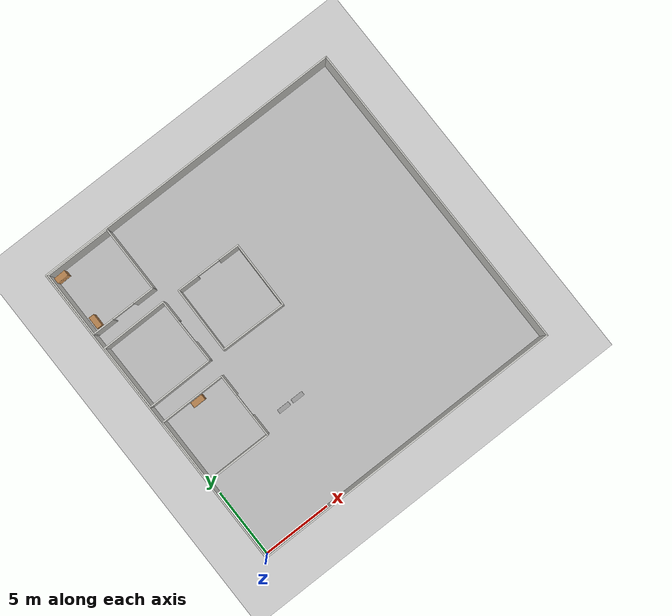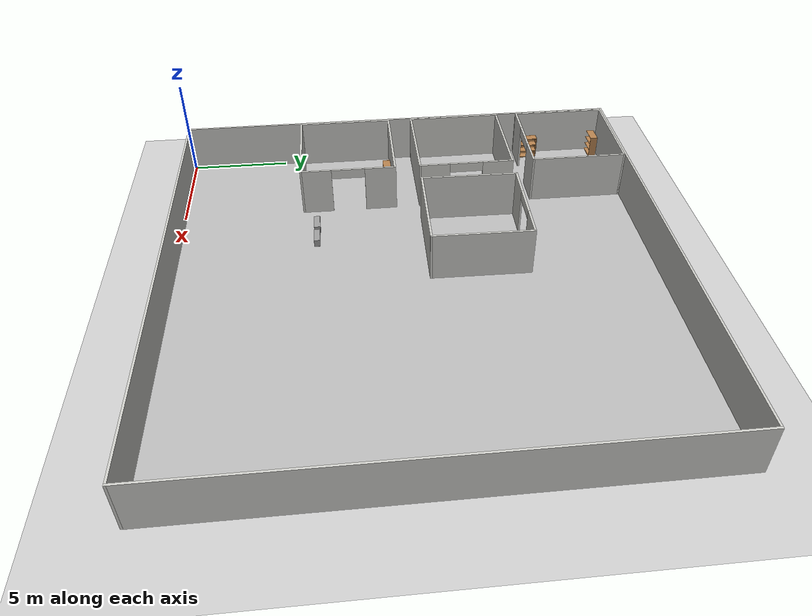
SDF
<sdf version="1.6">
 <world name="default">
  <model name="ground_plane">
   <static>1</static>
   <link name="link">
    <collision name="collision">
     <geometry><plane><normal>0 0 1</normal><size>100 100</size></plane></geometry>
     <surface><friction><ode><mu>100</mu><mu2>50</mu2></ode></friction></surface>
    </collision>
    <visual name="visual">
     <cast_shadows>0</cast_shadows>
     <geometry><plane><normal>0 0 1</normal><size>100 100</size></plane></geometry>
     <material>
      <script><uri>file://media/materials/scripts/gazebo.material</uri><name>Gazebo/Grey</name></script>
     </material>
    </visual>
   </link>
  </model>
  <model name="bookshelf">
   <static>1</static>
   <link name="link">
    <inertial><mass>1</mass></inertial>
    <collision name="back">
     <pose>0 0.005 0.6 0 -0 0</pose>
     <geometry><box><size>0.9 0.01 1.2</size></box></geometry>
    </collision>
    <visual name="visual1">
     <pose>0 0.005 0.6 0 -0 0</pose>
     <geometry><box><size>0.9 0.01 1.2</size></box></geometry>
     <material>
      <script><uri>file://media/materials/scripts/gazebo.material</uri><name>Gazebo/Wood</name></script>
     </material>
    </visual>
    <collision name="left_side">
     <pose>0.45 -0.195 0.6 0 -0 0</pose>
     <geometry><box><size>0.02 0.4 1.2</size></box></geometry>
    </collision>
    <visual name="visual2">
     <pose>0.45 -0.195 0.6 0 -0 0</pose>
     <geometry><box><size>0.02 0.4 1.2</size></box></geometry>
     <material>
      <script><uri>file://media/materials/scripts/gazebo.material</uri><name>Gazebo/Wood</name></script>
     </material>
    </visual>
    <collision name="right_side">
     <pose>-0.45 -0.195 0.6 0 -0 0</pose>
     <geometry><box><size>0.02 0.4 1.2</size></box></geometry>
    </collision>
    <visual name="visual3">
     <pose>-0.45 -0.195 0.6 0 -0 0</pose>
     <geometry><box><size>0.02 0.4 1.2</size></box></geometry>
     <material>
      <script><uri>file://media/materials/scripts/gazebo.material</uri><name>Gazebo/Wood</name></script>
     </material>
    </visual>
    <collision name="bottom">
     <pose>0 -0.195 0.03 0 -0 0</pose>
     <geometry><box><size>0.88 0.4 0.06</size></box></geometry>
    </collision>
    <visual name="visual4">
     <pose>0 -0.195 0.03 0 -0 0</pose>
     <geometry><box><size>0.88 0.4 0.06</size></box></geometry>
     <material>
      <script><uri>file://media/materials/scripts/gazebo.material</uri><name>Gazebo/Wood</name></script>
     </material>
    </visual>
    <collision name="top">
     <pose>0 -0.195 1.19 0 -0 0</pose>
     <geometry><box><size>0.88 0.4 0.02</size></box></geometry>
    </collision>
    <visual name="visual5">
     <pose>0 -0.195 1.19 0 -0 0</pose>
     <geometry><box><size>0.88 0.4 0.02</size></box></geometry>
     <material>
      <script><uri>file://media/materials/scripts/gazebo.material</uri><name>Gazebo/Wood</name></script>
     </material>
    </visual>
    <collision name="low_shelf">
     <pose>0 -0.195 0.43 0 -0 0</pose>
     <geometry><box><size>0.88 0.4 0.02</size></box></geometry>
    </collision>
    <visual name="visual6">
     <pose>0 -0.195 0.43 0 -0 0</pose>
     <geometry><box><size>0.88 0.4 0.02</size></box></geometry>
     <material>
      <script><uri>file://media/materials/scripts/gazebo.material</uri><name>Gazebo/Wood</name></script>
     </material>
    </visual>
    <collision name="high_shelf">
     <pose>0 -0.195 0.8 0 -0 0</pose>
     <geometry><box><size>0.88 0.4 0.02</size></box></geometry>
    </collision>
    <visual name="visual7">
     <pose>0 -0.195 0.8 0 -0 0</pose>
     <geometry><box><size>0.88 0.4 0.02</size></box></geometry>
     <material>
      <script><uri>file://media/materials/scripts/gazebo.material</uri><name>Gazebo/Wood</name></script>
     </material>
    </visual>
   </link>
   <pose>2.657 10.8309 0 0 -0 0</pose>
  </model>
  <model name="bookshelf_0">
   <static>1</static>
   <link name="link">
    <inertial><mass>1</mass></inertial>
    <collision name="back">
     <pose>0 0.005 0.6 0 -0 0</pose>
     <geometry><box><size>0.9 0.01 1.2</size></box></geometry>
    </collision>
    <visual name="visual1">
     <pose>0 0.005 0.6 0 -0 0</pose>
     <geometry><box><size>0.9 0.01 1.2</size></box></geometry>
     <material>
      <script><uri>file://media/materials/scripts/gazebo.material</uri><name>Gazebo/Wood</name></script>
     </material>
    </visual>
    <collision name="left_side">
     <pose>0.45 -0.195 0.6 0 -0 0</pose>
     <geometry><box><size>0.02 0.4 1.2</size></box></geometry>
    </collision>
    <visual name="visual2">
     <pose>0.45 -0.195 0.6 0 -0 0</pose>
     <geometry><box><size>0.02 0.4 1.2</size></box></geometry>
     <material>
      <script><uri>file://media/materials/scripts/gazebo.material</uri><name>Gazebo/Wood</name></script>
     </material>
    </visual>
    <collision name="right_side">
     <pose>-0.45 -0.195 0.6 0 -0 0</pose>
     <geometry><box><size>0.02 0.4 1.2</size></box></geometry>
    </collision>
    <visual name="visual3">
     <pose>-0.45 -0.195 0.6 0 -0 0</pose>
     <geometry><box><size>0.02 0.4 1.2</size></box></geometry>
     <material>
      <script><uri>file://media/materials/scripts/gazebo.material</uri><name>Gazebo/Wood</name></script>
     </material>
    </visual>
    <collision name="bottom">
     <pose>0 -0.195 0.03 0 -0 0</pose>
     <geometry><box><size>0.88 0.4 0.06</size></box></geometry>
    </collision>
    <visual name="visual4">
     <pose>0 -0.195 0.03 0 -0 0</pose>
     <geometry><box><size>0.88 0.4 0.06</size></box></geometry>
     <material>
      <script><uri>file://media/materials/scripts/gazebo.material</uri><name>Gazebo/Wood</name></script>
     </material>
    </visual>
    <collision name="top">
     <pose>0 -0.195 1.19 0 -0 0</pose>
     <geometry><box><size>0.88 0.4 0.02</size></box></geometry>
    </collision>
    <visual name="visual5">
     <pose>0 -0.195 1.19 0 -0 0</pose>
     <geometry><box><size>0.88 0.4 0.02</size></box></geometry>
     <material>
      <script><uri>file://media/materials/scripts/gazebo.material</uri><name>Gazebo/Wood</name></script>
     </material>
    </visual>
    <collision name="low_shelf">
     <pose>0 -0.195 0.43 0 -0 0</pose>
     <geometry><box><size>0.88 0.4 0.02</size></box></geometry>
    </collision>
    <visual name="visual6">
     <pose>0 -0.195 0.43 0 -0 0</pose>
     <geometry><box><size>0.88 0.4 0.02</size></box></geometry>
     <material>
      <script><uri>file://media/materials/scripts/gazebo.material</uri><name>Gazebo/Wood</name></script>
     </material>
    </visual>
    <collision name="high_shelf">
     <pose>0 -0.195 0.8 0 -0 0</pose>
     <geometry><box><size>0.88 0.4 0.02</size></box></geometry>
    </collision>
    <visual name="visual7">
     <pose>0 -0.195 0.8 0 -0 0</pose>
     <geometry><box><size>0.88 0.4 0.02</size></box></geometry>
     <material>
      <script><uri>file://media/materials/scripts/gazebo.material</uri><name>Gazebo/Wood</name></script>
     </material>
    </visual>
   </link>
   <pose>0.393452 18.8577 0 0 -0 1.56789</pose>
  </model>
  <model name="bookshelf_1">
   <static>1</static>
   <link name="link">
    <inertial><mass>1</mass></inertial>
    <collision name="back">
     <pose>0 0.005 0.6 0 -0 0</pose>
     <geometry><box><size>0.9 0.01 1.2</size></box></geometry>
    </collision>
    <visual name="visual1">
     <pose>0 0.005 0.6 0 -0 0</pose>
     <geometry><box><size>0.9 0.01 1.2</size></box></geometry>
     <material>
      <script><uri>file://media/materials/scripts/gazebo.material</uri><name>Gazebo/Wood</name></script>
     </material>
    </visual>
    <collision name="left_side">
     <pose>0.45 -0.195 0.6 0 -0 0</pose>
     <geometry><box><size>0.02 0.4 1.2</size></box></geometry>
    </collision>
    <visual name="visual2">
     <pose>0.45 -0.195 0.6 0 -0 0</pose>
     <geometry><box><size>0.02 0.4 1.2</size></box></geometry>
     <material>
      <script><uri>file://media/materials/scripts/gazebo.material</uri><name>Gazebo/Wood</name></script>
     </material>
    </visual>
    <collision name="right_side">
     <pose>-0.45 -0.195 0.6 0 -0 0</pose>
     <geometry><box><size>0.02 0.4 1.2</size></box></geometry>
    </collision>
    <visual name="visual3">
     <pose>-0.45 -0.195 0.6 0 -0 0</pose>
     <geometry><box><size>0.02 0.4 1.2</size></box></geometry>
     <material>
      <script><uri>file://media/materials/scripts/gazebo.material</uri><name>Gazebo/Wood</name></script>
     </material>
    </visual>
    <collision name="bottom">
     <pose>0 -0.195 0.03 0 -0 0</pose>
     <geometry><box><size>0.88 0.4 0.06</size></box></geometry>
    </collision>
    <visual name="visual4">
     <pose>0 -0.195 0.03 0 -0 0</pose>
     <geometry><box><size>0.88 0.4 0.06</size></box></geometry>
     <material>
      <script><uri>file://media/materials/scripts/gazebo.material</uri><name>Gazebo/Wood</name></script>
     </material>
    </visual>
    <collision name="top">
     <pose>0 -0.195 1.19 0 -0 0</pose>
     <geometry><box><size>0.88 0.4 0.02</size></box></geometry>
    </collision>
    <visual name="visual5">
     <pose>0 -0.195 1.19 0 -0 0</pose>
     <geometry><box><size>0.88 0.4 0.02</size></box></geometry>
     <material>
      <script><uri>file://media/materials/scripts/gazebo.material</uri><name>Gazebo/Wood</name></script>
     </material>
    </visual>
    <collision name="low_shelf">
     <pose>0 -0.195 0.43 0 -0 0</pose>
     <geometry><box><size>0.88 0.4 0.02</size></box></geometry>
    </collision>
    <visual name="visual6">
     <pose>0 -0.195 0.43 0 -0 0</pose>
     <geometry><box><size>0.88 0.4 0.02</size></box></geometry>
     <material>
      <script><uri>file://media/materials/scripts/gazebo.material</uri><name>Gazebo/Wood</name></script>
     </material>
    </visual>
    <collision name="high_shelf">
     <pose>0 -0.195 0.8 0 -0 0</pose>
     <geometry><box><size>0.88 0.4 0.02</size></box></geometry>
    </collision>
    <visual name="visual7">
     <pose>0 -0.195 0.8 0 -0 0</pose>
     <geometry><box><size>0.88 0.4 0.02</size></box></geometry>
     <material>
      <script><uri>file://media/materials/scripts/gazebo.material</uri><name>Gazebo/Wood</name></script>
     </material>
    </visual>
   </link>
   <pose>0.595698 22.7518 0 0 -0 0.024093</pose>
  </model>
  <model name="Wall_Cabinet_36x15W">
   <link name="Wall_0">
    <pose>0 0 0.01 0 -0 0</pose>
    <inertial>
     <mass>1.9796</mass>
     <inertia><ixx>0.0145</ixx><iyy>0.1511</iyy><izz>0.1367</izz><ixy>0</ixy><ixz>0</ixz><iyz>0</iyz></inertia>
    </inertial>
    <collision name="Wall_0_Collision"><geometry><box><size>0.91 0.296 0.02</size></box></geometry></collision>
    <visual name="Wall_0_Visual">
     <geometry><box><size>0.91 0.296 0.02</size></box></geometry>
     <material>
      <script><uri>file://media/materials/scripts/gazebo.material</uri><name>Gazebo/Grey</name></script>
      <ambient>1 1 1 1</ambient>
     </material>
    </visual>
   </link>
   <joint name="0_2" type="fixed">
    <pose>-0.455 0 0 0 -0 0</pose>
    <parent>Wall_2</parent>
    <child>Wall_0</child>
    <axis>
     <xyz>0 0 1</xyz>
     <use_parent_model_frame>0</use_parent_model_frame>
     <limit><lower>-1e+16</lower><upper>1e+16</upper></limit>
    </axis>
   </joint>
   <joint name="0_4" type="fixed">
    <pose>0.455 0 0 0 -0 0</pose>
    <parent>Wall_4</parent>
    <child>Wall_0</child>
    <axis>
     <xyz>0 0 1</xyz>
     <use_parent_model_frame>0</use_parent_model_frame>
     <limit><lower>-1e+16</lower><upper>1e+16</upper></limit>
    </axis>
   </joint>
   <joint name="0_8" type="fixed">
    <pose>0 -0.148 0 0 -0 0</pose>
    <parent>Wall_8</parent>
    <child>Wall_0</child>
    <axis>
     <xyz>0 0 1</xyz>
     <use_parent_model_frame>0</use_parent_model_frame>
     <limit><lower>-1e+16</lower><upper>1e+16</upper></limit>
    </axis>
   </joint>
   <link name="Wall_2">
    <pose>-0.445 0 0.192 0 -0 0</pose>
    <inertial>
     <mass>0.8353</mass>
     <inertia><ixx>0.0061</ixx><iyy>0.0164</iyy><izz>0.0103</izz><ixy>0</ixy><ixz>0</ixz><iyz>0</iyz></inertia>
    </inertial>
    <collision name="Wall_2_Collision"><geometry><box><size>0.02 0.296 0.384</size></box></geometry></collision>
    <visual name="Wall_2_Visual">
     <geometry><box><size>0.02 0.296 0.384</size></box></geometry>
     <material>
      <script><uri>file://media/materials/scripts/gazebo.material</uri><name>Gazebo/Grey</name></script>
      <ambient>1 1 1 1</ambient>
     </material>
    </visual>
   </link>
   <link name="Wall_4">
    <pose>0.445 0 0.192 0 -0 0</pose>
    <inertial>
     <mass>0.8353</mass>
     <inertia><ixx>0.0061</ixx><iyy>0.0164</iyy><izz>0.0103</izz><ixy>0</ixy><ixz>0</ixz><iyz>0</iyz></inertia>
    </inertial>
    <collision name="Wall_4_Collision"><geometry><box><size>0.02 0.296 0.384</size></box></geometry></collision>
    <visual name="Wall_4_Visual">
     <geometry><box><size>0.02 0.296 0.384</size></box></geometry>
     <material>
      <script><uri>file://media/materials/scripts/gazebo.material</uri><name>Gazebo/Grey</name></script>
      <ambient>1 1 1 1</ambient>
     </material>
    </visual>
   </link>
   <link name="Wall_6">
    <pose>0 0 0.374 0 -0 0</pose>
    <inertial>
     <mass>1.9796</mass>
     <inertia><ixx>0.0145</ixx><iyy>0.1511</iyy><izz>0.1367</izz><ixy>0</ixy><ixz>0</ixz><iyz>0</iyz></inertia>
    </inertial>
    <collision name="Wall_6_Collision"><geometry><box><size>0.91 0.296 0.02</size></box></geometry></collision>
    <visual name="Wall_6_Visual">
     <geometry><box><size>0.91 0.296 0.02</size></box></geometry>
     <material>
      <script><uri>file://media/materials/scripts/gazebo.material</uri><name>Gazebo/Grey</name></script>
      <ambient>1 1 1 1</ambient>
     </material>
    </visual>
   </link>
   <joint name="6_2" type="fixed">
    <pose>-0.455 0 0 0 -0 0</pose>
    <parent>Wall_2</parent>
    <child>Wall_6</child>
    <axis>
     <xyz>0 0 1</xyz>
     <use_parent_model_frame>0</use_parent_model_frame>
     <limit><lower>-1e+16</lower><upper>1e+16</upper></limit>
    </axis>
   </joint>
   <joint name="6_4" type="fixed">
    <pose>0.455 0 0 0 -0 0</pose>
    <parent>Wall_4</parent>
    <child>Wall_6</child>
    <axis>
     <xyz>0 0 1</xyz>
     <use_parent_model_frame>0</use_parent_model_frame>
     <limit><lower>-1e+16</lower><upper>1e+16</upper></limit>
    </axis>
   </joint>
   <joint name="6_8" type="fixed">
    <pose>0 -0.148 0 0 -0 0</pose>
    <parent>Wall_8</parent>
    <child>Wall_6</child>
    <axis>
     <xyz>0 0 1</xyz>
     <use_parent_model_frame>0</use_parent_model_frame>
     <limit><lower>-1e+16</lower><upper>1e+16</upper></limit>
    </axis>
   </joint>
   <link name="Wall_8">
    <pose>0 -0.138 0.19 0 -0 0</pose>
    <inertial>
     <mass>2.5302</mass>
     <inertia><ixx>0.0305</ixx><iyy>0.1732</iyy><izz>0.2035</izz><ixy>0</ixy><ixz>0</ixz><iyz>0</iyz></inertia>
    </inertial>
    <collision name="Wall_8_Collision"><geometry><box><size>0.906 0.02 0.38</size></box></geometry></collision>
    <visual name="Wall_8_Visual">
     <geometry><box><size>0.906 0.02 0.38</size></box></geometry>
     <material>
      <script><uri>file://media/materials/scripts/gazebo.material</uri><name>Gazebo/Grey</name></script>
      <ambient>1 1 1 1</ambient>
     </material>
    </visual>
   </link>
   <joint name="8_2" type="fixed">
    <pose>-0.453 0 0 0 -0 0</pose>
    <parent>Wall_2</parent>
    <child>Wall_8</child>
    <axis>
     <xyz>0 1 0</xyz>
     <use_parent_model_frame>0</use_parent_model_frame>
     <limit><lower>-1e+16</lower><upper>1e+16</upper></limit>
    </axis>
   </joint>
   <joint name="8_4" type="fixed">
    <pose>0.453 0 0 0 -0 0</pose>
    <parent>Wall_4</parent>
    <child>Wall_8</child>
    <axis>
     <xyz>0 1 0</xyz>
     <use_parent_model_frame>0</use_parent_model_frame>
     <limit><lower>-1e+16</lower><upper>1e+16</upper></limit>
    </axis>
   </joint>
   <static>1</static>
   <pose>7.91102 6.80902 0.327751 0 -0 0</pose>
  </model>
  <model name="Floor_room">
   <link name="main">
    <pose>0 0 0.01 0 -0 0</pose>
    <collision name="main_Collision"><geometry><box><size>23 23 0.001</size></box></geometry></collision>
    <visual name="main_Visual">
     <geometry><box><size>23 23 0.001</size></box></geometry>
     <material>
      <script>
       <uri>model://Floor_room/materials/scripts</uri>
       <uri>model://Floor_room/materials/textures</uri>
       <name>floor_room</name>
      </script>
     </material>
    </visual>
   </link>
   <static>1</static>
   <pose>11.5258 11.5627 0 0 -0 0</pose>
  </model>
  <model name="Box_36x15W">
   <link name="Wall">
    <pose>0 0 0.1985 0 -0 0</pose>
    <inertial>
     <mass>5</mass>
     <inertia><ixx>0.1022</ixx><iyy>0.4107</iyy><izz>0.3815</izz><ixy>0</ixy><ixz>0</ixz><iyz>0</iyz></inertia>
    </inertial>
    <collision name="Wall_Collision"><geometry><box><size>0.91 0.296 0.397</size></box></geometry></collision>
    <visual name="Wall_Visual">
     <geometry><box><size>0.91 0.296 0.397</size></box></geometry>
     <material>
      <script><uri>file://media/materials/scripts/gazebo.material</uri><name>Gazebo/Grey</name></script>
      <ambient>1 1 1 1</ambient>
     </material>
    </visual>
   </link>
   <static>1</static>
   <pose>6.79381 6.8189 0.308361 0 -0 0</pose>
  </model>
  <model name="large_wall">
   <pose>11.5252 11.5254 0 0 -0 0</pose>
   <link name="Wall_3">
    <collision name="Wall_3_Collision">
     <geometry><box><size>23.1 0.1 2.5</size></box></geometry>
     <pose>0 0 1.25 0 -0 0</pose>
    </collision>
    <visual name="Wall_3_Visual">
     <pose>0 0 1.25 0 -0 0</pose>
     <geometry><box><size>23.1 0.1 2.5</size></box></geometry>
     <material>
      <script><uri>file://media/materials/scripts/gazebo.material</uri><name>Gazebo/CeilingTiled</name></script>
      <ambient>1 0.764706 0.305882 1</ambient>
     </material>
     <meta><layer>0</layer></meta>
    </visual>
    <pose>0 11.5 0 0 -0 0</pose>
   </link>
   <link name="Wall_4">
    <collision name="Wall_4_Collision">
     <geometry><box><size>23.1 0.1 2.5</size></box></geometry>
     <pose>0 0 1.25 0 -0 0</pose>
    </collision>
    <visual name="Wall_4_Visual">
     <pose>0 0 1.25 0 -0 0</pose>
     <geometry><box><size>23.1 0.1 2.5</size></box></geometry>
     <material>
      <script><uri>file://media/materials/scripts/gazebo.material</uri><name>Gazebo/CeilingTiled</name></script>
      <ambient>1 0.764706 0.305882 1</ambient>
     </material>
     <meta><layer>0</layer></meta>
    </visual>
    <pose>11.5 0 0 0 0 -1.5708</pose>
   </link>
   <link name="Wall_5">
    <collision name="Wall_5_Collision">
     <geometry><box><size>23.1 0.1 2.5</size></box></geometry>
     <pose>0 0 1.25 0 -0 0</pose>
    </collision>
    <visual name="Wall_5_Visual">
     <pose>0 0 1.25 0 -0 0</pose>
     <geometry><box><size>23.1 0.1 2.5</size></box></geometry>
     <material>
      <script><uri>file://media/materials/scripts/gazebo.material</uri><name>Gazebo/CeilingTiled</name></script>
      <ambient>1 0.764706 0.305882 1</ambient>
     </material>
     <meta><layer>0</layer></meta>
    </visual>
    <pose>0 -11.5 0 0 -0 3.14159</pose>
   </link>
   <link name="Wall_6">
    <collision name="Wall_6_Collision">
     <geometry><box><size>23.1 0.1 2.5</size></box></geometry>
     <pose>0 0 1.25 0 -0 0</pose>
    </collision>
    <visual name="Wall_6_Visual">
     <pose>0 0 1.25 0 -0 0</pose>
     <geometry><box><size>23.1 0.1 2.5</size></box></geometry>
     <material>
      <script><uri>file://media/materials/scripts/gazebo.material</uri><name>Gazebo/CeilingTiled</name></script>
      <ambient>1 0.764706 0.305882 1</ambient>
     </material>
     <meta><layer>0</layer></meta>
    </visual>
    <pose>-11.5 0 0 0 -0 1.5708</pose>
   </link>
   <static>1</static>
  </model>
  <model name="room_wall">
   <pose>2.52771 8.5227 0 0 -0 0</pose>
   <link name="Wall_21">
    <collision name="Wall_21_Collision">
     <geometry><box><size>4.9 0.1 2.5</size></box></geometry>
     <pose>0 0 1.25 0 -0 0</pose>
    </collision>
    <visual name="Wall_21_Visual">
     <pose>0 0 1.25 0 -0 0</pose>
     <geometry><box><size>4.9 0.1 2.5</size></box></geometry>
     <material>
      <script><uri>file://media/materials/scripts/gazebo.material</uri><name>Gazebo/CeilingTiled</name></script>
      <ambient>1 0.764706 0.305882 1</ambient>
     </material>
     <meta><layer>0</layer></meta>
    </visual>
    <pose>0 2.4 0 0 -0 0</pose>
   </link>
   <link name="Wall_22">
    <pose>2.4 0 0 0 0 -1.5708</pose>
    <visual name="Wall_22_Visual_0">
     <pose>-1.64961 0 1.25 0 -0 0</pose>
     <geometry><box><size>1.60079 0.1 2.5</size></box></geometry>
     <material>
      <script><uri>file://media/materials/scripts/gazebo.material</uri><name>Gazebo/CeilingTiled</name></script>
      <ambient>1 0.764706 0.305882 1</ambient>
     </material>
     <meta><layer>0</layer></meta>
    </visual>
    <collision name="Wall_22_Collision_0">
     <geometry><box><size>1.60079 0.1 2.5</size></box></geometry>
     <pose>-1.64961 0 1.25 0 -0 0</pose>
    </collision>
    <visual name="Wall_22_Visual_1">
     <pose>1.65039 0 1.25 0 -0 0</pose>
     <geometry><box><size>1.59921 0.1 2.5</size></box></geometry>
     <material>
      <script><uri>file://media/materials/scripts/gazebo.material</uri><name>Gazebo/CeilingTiled</name></script>
      <ambient>1 0.764706 0.305882 1</ambient>
     </material>
     <meta><layer>0</layer></meta>
    </visual>
    <collision name="Wall_22_Collision_1">
     <geometry><box><size>1.59921 0.1 2.5</size></box></geometry>
     <pose>1.65039 0 1.25 0 -0 0</pose>
    </collision>
    <visual name="Wall_22_Visual_2">
     <pose>0.000786 0 2.25 0 -0 0</pose>
     <geometry><box><size>1.7 0.1 0.5</size></box></geometry>
     <material>
      <script><uri>file://media/materials/scripts/gazebo.material</uri><name>Gazebo/CeilingTiled</name></script>
      <ambient>1 0.764706 0.305882 1</ambient>
     </material>
     <meta><layer>0</layer></meta>
    </visual>
    <collision name="Wall_22_Collision_2">
     <geometry><box><size>1.7 0.1 0.5</size></box></geometry>
     <pose>0.000786 0 2.25 0 -0 0</pose>
    </collision>
   </link>
   <link name="Wall_23">
    <collision name="Wall_23_Collision">
     <geometry><box><size>4.9 0.1 2.5</size></box></geometry>
     <pose>0 0 1.25 0 -0 0</pose>
    </collision>
    <visual name="Wall_23_Visual">
     <pose>0 0 1.25 0 -0 0</pose>
     <geometry><box><size>4.9 0.1 2.5</size></box></geometry>
     <material>
      <script><uri>file://media/materials/scripts/gazebo.material</uri><name>Gazebo/CeilingTiled</name></script>
      <ambient>1 0.764706 0.305882 1</ambient>
     </material>
     <meta><layer>0</layer></meta>
    </visual>
    <pose>0 -2.4 0 0 -0 3.14159</pose>
   </link>
   <link name="Wall_24">
    <collision name="Wall_24_Collision">
     <geometry><box><size>4.9 0.1 2.5</size></box></geometry>
     <pose>0 0 1.25 0 -0 0</pose>
    </collision>
    <visual name="Wall_24_Visual">
     <pose>0 0 1.25 0 -0 0</pose>
     <geometry><box><size>4.9 0.1 2.5</size></box></geometry>
     <material>
      <script><uri>file://media/materials/scripts/gazebo.material</uri><name>Gazebo/CeilingTiled</name></script>
      <ambient>1 0.764706 0.305882 1</ambient>
     </material>
     <meta><layer>0</layer></meta>
    </visual>
    <pose>-2.4 0 0 0 -0 1.5708</pose>
   </link>
   <static>1</static>
  </model>
  <model name="room_wall_0">
   <pose>2.52689 14.5974 0 0 -0 0.006123</pose>
   <link name="Wall_21">
    <collision name="Wall_21_Collision">
     <geometry><box><size>4.9 0.1 2.5</size></box></geometry>
     <pose>0 0 1.25 0 -0 0</pose>
    </collision>
    <visual name="Wall_21_Visual">
     <pose>0 0 1.25 0 -0 0</pose>
     <geometry><box><size>4.9 0.1 2.5</size></box></geometry>
     <material>
      <script><uri>file://media/materials/scripts/gazebo.material</uri><name>Gazebo/CeilingTiled</name></script>
      <ambient>1 0.764706 0.305882 1</ambient>
     </material>
     <meta><layer>0</layer></meta>
    </visual>
    <pose>0 2.4 0 0 -0 0</pose>
   </link>
   <link name="Wall_22">
    <pose>2.4 0 0 0 0 -1.5708</pose>
    <visual name="Wall_22_Visual_0">
     <pose>-1.64961 0 1.25 0 -0 0</pose>
     <geometry><box><size>1.60079 0.1 2.5</size></box></geometry>
     <material>
      <script><uri>file://media/materials/scripts/gazebo.material</uri><name>Gazebo/CeilingTiled</name></script>
      <ambient>1 0.764706 0.305882 1</ambient>
     </material>
     <meta><layer>0</layer></meta>
    </visual>
    <collision name="Wall_22_Collision_0">
     <geometry><box><size>1.60079 0.1 2.5</size></box></geometry>
     <pose>-1.64961 0 1.25 0 -0 0</pose>
    </collision>
    <visual name="Wall_22_Visual_1">
     <pose>1.65039 0 1.25 0 -0 0</pose>
     <geometry><box><size>1.59921 0.1 2.5</size></box></geometry>
     <material>
      <script><uri>file://media/materials/scripts/gazebo.material</uri><name>Gazebo/CeilingTiled</name></script>
      <ambient>1 0.764706 0.305882 1</ambient>
     </material>
     <meta><layer>0</layer></meta>
    </visual>
    <collision name="Wall_22_Collision_1">
     <geometry><box><size>1.59921 0.1 2.5</size></box></geometry>
     <pose>1.65039 0 1.25 0 -0 0</pose>
    </collision>
    <visual name="Wall_22_Visual_2">
     <pose>0.000786 0 2.25 0 -0 0</pose>
     <geometry><box><size>1.7 0.1 0.5</size></box></geometry>
     <material>
      <script><uri>file://media/materials/scripts/gazebo.material</uri><name>Gazebo/CeilingTiled</name></script>
      <ambient>1 0.764706 0.305882 1</ambient>
     </material>
     <meta><layer>0</layer></meta>
    </visual>
    <collision name="Wall_22_Collision_2">
     <geometry><box><size>1.7 0.1 0.5</size></box></geometry>
     <pose>0.000786 0 2.25 0 -0 0</pose>
    </collision>
   </link>
   <link name="Wall_23">
    <collision name="Wall_23_Collision">
     <geometry><box><size>4.9 0.1 2.5</size></box></geometry>
     <pose>0 0 1.25 0 -0 0</pose>
    </collision>
    <visual name="Wall_23_Visual">
     <pose>0 0 1.25 0 -0 0</pose>
     <geometry><box><size>4.9 0.1 2.5</size></box></geometry>
     <material>
      <script><uri>file://media/materials/scripts/gazebo.material</uri><name>Gazebo/CeilingTiled</name></script>
      <ambient>1 0.764706 0.305882 1</ambient>
     </material>
     <meta><layer>0</layer></meta>
    </visual>
    <pose>0 -2.4 0 0 -0 3.14159</pose>
   </link>
   <link name="Wall_24">
    <collision name="Wall_24_Collision">
     <geometry><box><size>4.9 0.1 2.5</size></box></geometry>
     <pose>0 0 1.25 0 -0 0</pose>
    </collision>
    <visual name="Wall_24_Visual">
     <pose>0 0 1.25 0 -0 0</pose>
     <geometry><box><size>4.9 0.1 2.5</size></box></geometry>
     <material>
      <script><uri>file://media/materials/scripts/gazebo.material</uri><name>Gazebo/CeilingTiled</name></script>
      <ambient>1 0.764706 0.305882 1</ambient>
     </material>
     <meta><layer>0</layer></meta>
    </visual>
    <pose>-2.4 0 0 0 -0 1.5708</pose>
   </link>
   <static>1</static>
  </model>
  <model name="room_wall_1">
   <pose>2.53621 20.5365 0 0 0 -1.5723</pose>
   <link name="Wall_21">
    <collision name="Wall_21_Collision">
     <geometry><box><size>4.9 0.1 2.5</size></box></geometry>
     <pose>0 0 1.25 0 -0 0</pose>
    </collision>
    <visual name="Wall_21_Visual">
     <pose>0 0 1.25 0 -0 0</pose>
     <geometry><box><size>4.9 0.1 2.5</size></box></geometry>
     <material>
      <script><uri>file://media/materials/scripts/gazebo.material</uri><name>Gazebo/CeilingTiled</name></script>
      <ambient>1 0.764706 0.305882 1</ambient>
     </material>
     <meta><layer>0</layer></meta>
    </visual>
    <pose>0 2.4 0 0 -0 0</pose>
   </link>
   <link name="Wall_22">
    <pose>2.4 0 0 0 0 -1.5708</pose>
    <visual name="Wall_22_Visual_0">
     <pose>-1.64961 0 1.25 0 -0 0</pose>
     <geometry><box><size>1.60079 0.1 2.5</size></box></geometry>
     <material>
      <script><uri>file://media/materials/scripts/gazebo.material</uri><name>Gazebo/CeilingTiled</name></script>
      <ambient>1 0.764706 0.305882 1</ambient>
     </material>
     <meta><layer>0</layer></meta>
    </visual>
    <collision name="Wall_22_Collision_0">
     <geometry><box><size>1.60079 0.1 2.5</size></box></geometry>
     <pose>-1.64961 0 1.25 0 -0 0</pose>
    </collision>
    <visual name="Wall_22_Visual_1">
     <pose>1.65039 0 1.25 0 -0 0</pose>
     <geometry><box><size>1.59921 0.1 2.5</size></box></geometry>
     <material>
      <script><uri>file://media/materials/scripts/gazebo.material</uri><name>Gazebo/CeilingTiled</name></script>
      <ambient>1 0.764706 0.305882 1</ambient>
     </material>
     <meta><layer>0</layer></meta>
    </visual>
    <collision name="Wall_22_Collision_1">
     <geometry><box><size>1.59921 0.1 2.5</size></box></geometry>
     <pose>1.65039 0 1.25 0 -0 0</pose>
    </collision>
    <visual name="Wall_22_Visual_2">
     <pose>0.000786 0 2.25 0 -0 0</pose>
     <geometry><box><size>1.7 0.1 0.5</size></box></geometry>
     <material>
      <script><uri>file://media/materials/scripts/gazebo.material</uri><name>Gazebo/CeilingTiled</name></script>
      <ambient>1 0.764706 0.305882 1</ambient>
     </material>
     <meta><layer>0</layer></meta>
    </visual>
    <collision name="Wall_22_Collision_2">
     <geometry><box><size>1.7 0.1 0.5</size></box></geometry>
     <pose>0.000786 0 2.25 0 -0 0</pose>
    </collision>
   </link>
   <link name="Wall_23">
    <collision name="Wall_23_Collision">
     <geometry><box><size>4.9 0.1 2.5</size></box></geometry>
     <pose>0 0 1.25 0 -0 0</pose>
    </collision>
    <visual name="Wall_23_Visual">
     <pose>0 0 1.25 0 -0 0</pose>
     <geometry><box><size>4.9 0.1 2.5</size></box></geometry>
     <material>
      <script><uri>file://media/materials/scripts/gazebo.material</uri><name>Gazebo/CeilingTiled</name></script>
      <ambient>1 0.764706 0.305882 1</ambient>
     </material>
     <meta><layer>0</layer></meta>
    </visual>
    <pose>0 -2.4 0 0 -0 3.14159</pose>
   </link>
   <link name="Wall_24">
    <collision name="Wall_24_Collision">
     <geometry><box><size>4.9 0.1 2.5</size></box></geometry>
     <pose>0 0 1.25 0 -0 0</pose>
    </collision>
    <visual name="Wall_24_Visual">
     <pose>0 0 1.25 0 -0 0</pose>
     <geometry><box><size>4.9 0.1 2.5</size></box></geometry>
     <material>
      <script><uri>file://media/materials/scripts/gazebo.material</uri><name>Gazebo/CeilingTiled</name></script>
      <ambient>1 0.764706 0.305882 1</ambient>
     </material>
     <meta><layer>0</layer></meta>
    </visual>
    <pose>-2.4 0 0 0 -0 1.5708</pose>
   </link>
   <static>1</static>
  </model>
  <model name="room_wall_5">
   <pose>8.52126 14.548 0 0 -0 1.55771</pose>
   <link name="Wall_21">
    <collision name="Wall_21_Collision">
     <geometry><box><size>4.9 0.1 2.5</size></box></geometry>
     <pose>0 0 1.25 0 -0 0</pose>
    </collision>
    <visual name="Wall_21_Visual">
     <pose>0 0 1.25 0 -0 0</pose>
     <geometry><box><size>4.9 0.1 2.5</size></box></geometry>
     <material>
      <script><uri>file://media/materials/scripts/gazebo.material</uri><name>Gazebo/CeilingTiled</name></script>
      <ambient>1 0.764706 0.305882 1</ambient>
     </material>
     <meta><layer>0</layer></meta>
    </visual>
    <pose>0 2.4 0 0 -0 0</pose>
   </link>
   <link name="Wall_22">
    <pose>2.4 0 0 0 0 -1.5708</pose>
    <visual name="Wall_22_Visual_0">
     <pose>-1.64961 0 1.25 0 -0 0</pose>
     <geometry><box><size>1.60079 0.1 2.5</size></box></geometry>
     <material>
      <script><uri>file://media/materials/scripts/gazebo.material</uri><name>Gazebo/CeilingTiled</name></script>
      <ambient>1 0.764706 0.305882 1</ambient>
     </material>
     <meta><layer>0</layer></meta>
    </visual>
    <collision name="Wall_22_Collision_0">
     <geometry><box><size>1.60079 0.1 2.5</size></box></geometry>
     <pose>-1.64961 0 1.25 0 -0 0</pose>
    </collision>
    <visual name="Wall_22_Visual_1">
     <pose>1.65039 0 1.25 0 -0 0</pose>
     <geometry><box><size>1.59921 0.1 2.5</size></box></geometry>
     <material>
      <script><uri>file://media/materials/scripts/gazebo.material</uri><name>Gazebo/CeilingTiled</name></script>
      <ambient>1 0.764706 0.305882 1</ambient>
     </material>
     <meta><layer>0</layer></meta>
    </visual>
    <collision name="Wall_22_Collision_1">
     <geometry><box><size>1.59921 0.1 2.5</size></box></geometry>
     <pose>1.65039 0 1.25 0 -0 0</pose>
    </collision>
    <visual name="Wall_22_Visual_2">
     <pose>0.000786 0 2.25 0 -0 0</pose>
     <geometry><box><size>1.7 0.1 0.5</size></box></geometry>
     <material>
      <script><uri>file://media/materials/scripts/gazebo.material</uri><name>Gazebo/CeilingTiled</name></script>
      <ambient>1 0.764706 0.305882 1</ambient>
     </material>
     <meta><layer>0</layer></meta>
    </visual>
    <collision name="Wall_22_Collision_2">
     <geometry><box><size>1.7 0.1 0.5</size></box></geometry>
     <pose>0.000786 0 2.25 0 -0 0</pose>
    </collision>
   </link>
   <link name="Wall_23">
    <collision name="Wall_23_Collision">
     <geometry><box><size>4.9 0.1 2.5</size></box></geometry>
     <pose>0 0 1.25 0 -0 0</pose>
    </collision>
    <visual name="Wall_23_Visual">
     <pose>0 0 1.25 0 -0 0</pose>
     <geometry><box><size>4.9 0.1 2.5</size></box></geometry>
     <material>
      <script><uri>file://media/materials/scripts/gazebo.material</uri><name>Gazebo/CeilingTiled</name></script>
      <ambient>1 0.764706 0.305882 1</ambient>
     </material>
     <meta><layer>0</layer></meta>
    </visual>
    <pose>0 -2.4 0 0 -0 3.14159</pose>
   </link>
   <link name="Wall_24">
    <collision name="Wall_24_Collision">
     <geometry><box><size>4.9 0.1 2.5</size></box></geometry>
     <pose>0 0 1.25 0 -0 0</pose>
    </collision>
    <visual name="Wall_24_Visual">
     <pose>0 0 1.25 0 -0 0</pose>
     <geometry><box><size>4.9 0.1 2.5</size></box></geometry>
     <material>
      <script><uri>file://media/materials/scripts/gazebo.material</uri><name>Gazebo/CeilingTiled</name></script>
      <ambient>1 0.764706 0.305882 1</ambient>
     </material>
     <meta><layer>0</layer></meta>
    </visual>
    <pose>-2.4 0 0 0 -0 1.5708</pose>
   </link>
   <static>1</static>
  </model>
 </world>
</sdf>
